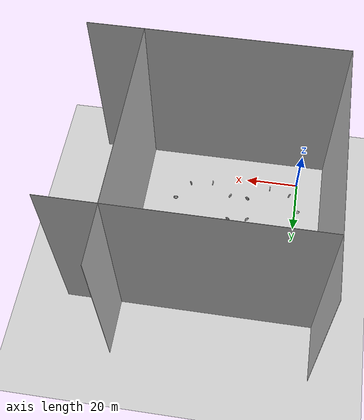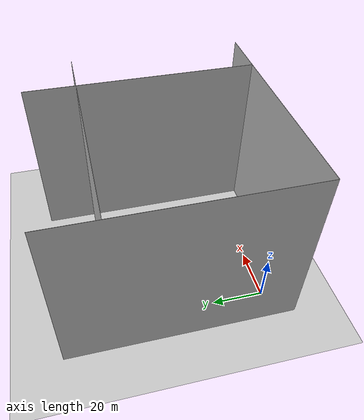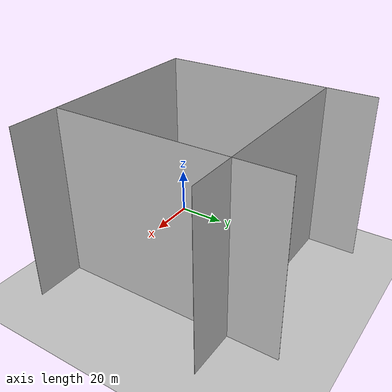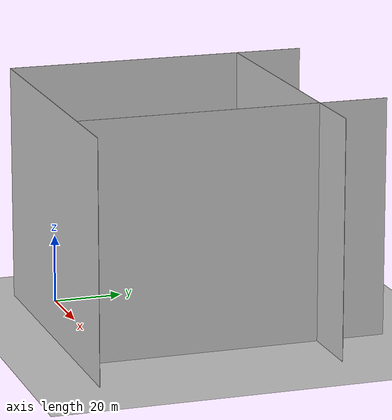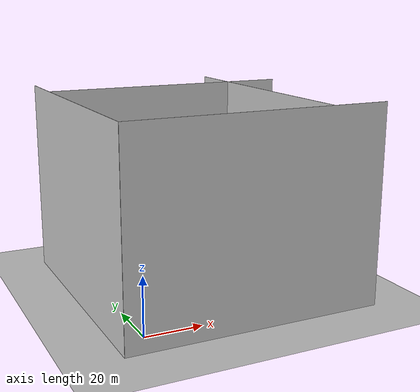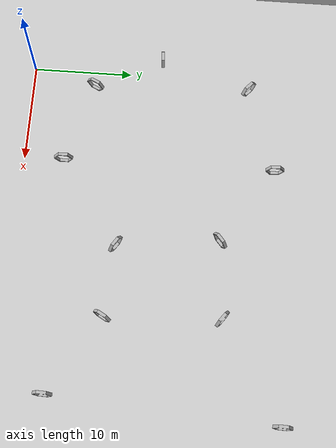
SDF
<sdf version="1.6">
 <world name="dubai_track">
  <plugin name="ros_interface_plugin" filename="librotors_gazebo_ros_interface_plugin.so"/>
  <physics name="default_physics" default="0" type="ode">
   <max_step_size>0.001</max_step_size>
   <real_time_update_rate>2000</real_time_update_rate>
   <real_time_factor>1</real_time_factor>
  </physics>
  <model name="ground_plane">
   <static>1</static>
   <link name="link">
    <collision name="collision">
     <geometry><plane><normal>0 0 1</normal><size>120 120</size></plane></geometry>
     <surface><friction><ode><mu>100</mu><mu2>50</mu2></ode></friction></surface>
    </collision>
    <visual name="visual">
     <cast_shadows>0</cast_shadows>
     <geometry><plane><normal>0 0 1</normal><size>120 120</size></plane></geometry>
     <material>
      <script>
       <uri>model://ground_plane/materials/scripts/ground_plane.material</uri>
       <name>ground_plane</name>
      </script>
     </material>
    </visual>
   </link>
  </model>
  <model name="wall_1">
   <pose>-10 35 34 0 -0 0</pose>
   <static>1</static>
   <link name="link">
    <inertial><mass>1</mass></inertial>
    <collision name="collision"><geometry><box><size>0.1 90 70</size></box></geometry></collision>
    <visual name="visual">
     <geometry><box><size>0.1 90 70</size></box></geometry>
     <material>
      <script>
       <uri>model://race_track/iros_materials/materials/scripts/sky.material</uri>
       <uri>model://race_track/iros_materials/materials/textures</uri>
       <name>iros/sky</name>
      </script>
     </material>
    </visual>
   </link>
  </model>
  <model name="wall_2">
   <pose>60 35 34 0 -0 0</pose>
   <static>1</static>
   <link name="link">
    <inertial><mass>1</mass></inertial>
    <collision name="collision"><geometry><box><size>0.1 90 70</size></box></geometry></collision>
    <visual name="visual">
     <geometry><box><size>0.1 90 70</size></box></geometry>
     <material>
      <script>
       <uri>model://race_track/iros_materials/materials/scripts/sky.material</uri>
       <uri>model://race_track/iros_materials/materials/textures</uri>
       <name>iros/sky</name>
      </script>
     </material>
    </visual>
   </link>
  </model>
  <model name="wall_3">
   <pose>35 60 34 0 -0 0</pose>
   <static>1</static>
   <link name="link">
    <inertial><mass>1</mass></inertial>
    <collision name="collision"><geometry><box><size>90 0.1 70</size></box></geometry></collision>
    <visual name="visual">
     <geometry><box><size>90 0.1 70</size></box></geometry>
     <material>
      <script>
       <uri>model://race_track/iros_materials/materials/scripts/sky.material</uri>
       <uri>model://race_track/iros_materials/materials/textures</uri>
       <name>iros/sky</name>
      </script>
     </material>
    </visual>
   </link>
  </model>
  <model name="wall_4">
   <pose>35 -10 34 0 -0 0</pose>
   <static>1</static>
   <link name="link">
    <inertial><mass>1</mass></inertial>
    <collision name="collision"><geometry><box><size>90 0.1 70</size></box></geometry></collision>
    <visual name="visual">
     <geometry><box><size>90 0.1 70</size></box></geometry>
     <material>
      <script>
       <uri>model://race_track/iros_materials/materials/scripts/sky.material</uri>
       <uri>model://race_track/iros_materials/materials/textures</uri>
       <name>iros/sky</name>
      </script>
     </material>
    </visual>
   </link>
  </model>
  <model name="gate_1">
   <pose>2.67719 6.70695 2 0 0 -0.447182</pose>
   <static>1</static>
   <link name="gate_1_body">
    <collision name="gate_1_collision">
     <geometry><mesh><uri>model://race_track/real_world/gate/meshes/gate.stl</uri></mesh></geometry>
    </collision>
    <visual name="gate_1_visual">
     <geometry><mesh><uri>model://race_track/real_world/gate/meshes/gate.dae</uri></mesh></geometry>
    </visual>
   </link>
  </model>
  <model name="gate_2">
   <pose>10.5951 4.23611 1.5 0 -0 0.011479</pose>
   <static>1</static>
   <link name="gate_2_body">
    <collision name="gate_2_collision">
     <geometry><mesh><uri>model://race_track/real_world/gate/meshes/gate.stl</uri></mesh></geometry>
    </collision>
    <visual name="gate_2_visual">
     <geometry><mesh><uri>model://race_track/real_world/gate/meshes/gate.dae</uri></mesh></geometry>
    </visual>
   </link>
  </model>
  <model name="gate_3">
   <pose>19.0796 10.0924 1.4 0 -0 0.974806</pose>
   <static>1</static>
   <link name="gate_3_body">
    <collision name="gate_3_collision">
     <geometry><mesh><uri>model://race_track/real_world/gate/meshes/gate.stl</uri></mesh></geometry>
    </collision>
    <visual name="gate_3_visual">
     <geometry><mesh><uri>model://race_track/real_world/gate/meshes/gate.dae</uri></mesh></geometry>
    </visual>
   </link>
  </model>
  <model name="gate_4">
   <pose>25.6675 20.6245 1.5 0 0 -2.2117</pose>
   <static>1</static>
   <link name="gate_4_body">
    <collision name="gate_4_collision">
     <geometry><mesh><uri>model://race_track/real_world/gate/meshes/gate.stl</uri></mesh></geometry>
    </collision>
    <visual name="gate_4_visual">
     <geometry><mesh><uri>model://race_track/real_world/gate/meshes/gate.dae</uri></mesh></geometry>
    </visual>
   </link>
  </model>
  <model name="gate_5">
   <pose>35.1417 26.4984 1.4 0 -0 3.10375</pose>
   <static>1</static>
   <link name="gate_5_body">
    <collision name="gate_5_collision">
     <geometry><mesh><uri>model://race_track/real_world/gate/meshes/gate.stl</uri></mesh></geometry>
    </collision>
    <visual name="gate_5_visual">
     <geometry><mesh><uri>model://race_track/real_world/gate/meshes/gate.dae</uri></mesh></geometry>
    </visual>
   </link>
  </model>
  <model name="gate_6">
   <pose>45.0346 22.2569 1.3 0 -0 2.17527</pose>
   <static>1</static>
   <link name="gate_6_body">
    <collision name="gate_6_collision">
     <geometry><mesh><uri>model://race_track/real_world/gate/meshes/gate.stl</uri></mesh></geometry>
    </collision>
    <visual name="gate_6_visual">
     <geometry><mesh><uri>model://race_track/real_world/gate/meshes/gate.dae</uri></mesh></geometry>
    </visual>
   </link>
  </model>
  <model name="gate_7">
   <pose>47.4443 13.6256 1.4 0 -0 1.57973</pose>
   <static>1</static>
   <link name="gate_7_body">
    <collision name="gate_7_collision">
     <geometry><mesh><uri>model://race_track/real_world/gate/meshes/gate.stl</uri></mesh></geometry>
    </collision>
    <visual name="gate_7_visual">
     <geometry><mesh><uri>model://race_track/real_world/gate/meshes/gate.dae</uri></mesh></geometry>
    </visual>
   </link>
  </model>
  <model name="gate_8">
   <pose>42.4307 5.78127 0.9 0 0 -2.63864</pose>
   <static>1</static>
   <link name="gate_8_body">
    <collision name="gate_8_collision">
     <geometry><mesh><uri>model://race_track/real_world/gate/meshes/gate.stl</uri></mesh></geometry>
    </collision>
    <visual name="gate_8_visual">
     <geometry><mesh><uri>model://race_track/real_world/gate/meshes/gate.dae</uri></mesh></geometry>
    </visual>
   </link>
  </model>
  <model name="gate_9">
   <pose>33.6687 4.71178 1.4 0 -0 3.10979</pose>
   <static>1</static>
   <link name="gate_9_body">
    <collision name="gate_9_collision">
     <geometry><mesh><uri>model://race_track/real_world/gate/meshes/gate.stl</uri></mesh></geometry>
    </collision>
    <visual name="gate_9_visual">
     <geometry><mesh><uri>model://race_track/real_world/gate/meshes/gate.dae</uri></mesh></geometry>
    </visual>
   </link>
  </model>
  <model name="gate_10">
   <pose>26.0125 9.41809 0.9 0 0 -0.514769</pose>
   <static>1</static>
   <link name="gate_10_body">
    <collision name="gate_10_collision">
     <geometry><mesh><uri>model://race_track/real_world/gate/meshes/gate.stl</uri></mesh></geometry>
    </collision>
    <visual name="gate_10_visual">
     <geometry><mesh><uri>model://race_track/real_world/gate/meshes/gate.dae</uri></mesh></geometry>
    </visual>
   </link>
  </model>
  <model name="gate_11">
   <pose>18.2181 20.0025 2 0 0 -0.874979</pose>
   <static>1</static>
   <link name="gate_11_body">
    <collision name="gate_11_collision">
     <geometry><mesh><uri>model://race_track/real_world/gate/meshes/gate.stl</uri></mesh></geometry>
    </collision>
    <visual name="gate_11_visual">
     <geometry><mesh><uri>model://race_track/real_world/gate/meshes/gate.dae</uri></mesh></geometry>
    </visual>
   </link>
  </model>
  <model name="gate_12">
   <pose>10.2397 25.0567 0.9 0 0 -3.10152</pose>
   <static>1</static>
   <link name="gate_12_body">
    <collision name="gate_12_collision">
     <geometry><mesh><uri>model://race_track/real_world/gate/meshes/gate.stl</uri></mesh></geometry>
    </collision>
    <visual name="gate_12_visual">
     <geometry><mesh><uri>model://race_track/real_world/gate/meshes/gate.dae</uri></mesh></geometry>
    </visual>
   </link>
  </model>
  <model name="gate_13">
   <pose>2.12946 22.0464 2 0 -0 0.822026</pose>
   <static>1</static>
   <link name="gate_13_body">
    <collision name="gate_13_collision">
     <geometry><mesh><uri>model://race_track/real_world/gate/meshes/gate.stl</uri></mesh></geometry>
    </collision>
    <visual name="gate_13_visual">
     <geometry><mesh><uri>model://race_track/real_world/gate/meshes/gate.dae</uri></mesh></geometry>
    </visual>
   </link>
  </model>
  <model name="gate_14">
   <pose>-1.15213 13.1935 0.9 0 0 -1.5</pose>
   <static>1</static>
   <link name="gate_14_body">
    <collision name="gate_14_collision">
     <geometry><mesh><uri>model://race_track/real_world/gate/meshes/gate.stl</uri></mesh></geometry>
    </collision>
    <visual name="gate_14_visual">
     <geometry><mesh><uri>model://race_track/real_world/gate/meshes/gate.dae</uri></mesh></geometry>
    </visual>
   </link>
  </model>
  <scene><ambient>1 1 1 1</ambient><background>0.7 0.7 0.7 1</background><shadows>1</shadows></scene>
  <gravity>0 0 -9.8</gravity>
  <magnetic_field>6e-06 2.3e-05 -4.2e-05</magnetic_field>
  <atmosphere type="adiabatic"/>
  <audio><device>default</device></audio>
  <spherical_coordinates>
   <surface_model>EARTH_WGS84</surface_model>
   <latitude_deg>0</latitude_deg>
   <longitude_deg>0</longitude_deg>
   <elevation>0</elevation>
   <heading_deg>0</heading_deg>
  </spherical_coordinates>
  <light name="user_point_light_0" type="point">
   <pose>14.3744 -31.3614 1 0 -0 0</pose>
   <diffuse>0.5 0.5 0.5 1</diffuse>
   <specular>0.1 0.1 0.1 1</specular>
   <attenuation>
    <range>100</range>
    <constant>1.0</constant>
    <linear>0.0</linear>
    <quadratic>0.0</quadratic>
   </attenuation>
   <cast_shadows>0</cast_shadows>
   <direction>0 0 -1</direction>
  </light>
  <light name="user_point_light_1" type="point">
   <pose>22.1188 -31.6852 1 0 -0 0</pose>
   <diffuse>0.5 0.5 0.5 1</diffuse>
   <specular>0.1 0.1 0.1 1</specular>
   <attenuation>
    <range>100</range>
    <constant>1.0</constant>
    <linear>0.0</linear>
    <quadratic>0.0</quadratic>
   </attenuation>
   <cast_shadows>0</cast_shadows>
   <direction>0 0 -1</direction>
  </light>
  <light name="user_point_light_2" type="point">
   <pose>31.4331 -33.084 1 0 -0 0</pose>
   <diffuse>0.5 0.5 0.5 1</diffuse>
   <specular>0.1 0.1 0.1 1</specular>
   <attenuation>
    <range>100</range>
    <constant>1.0</constant>
    <linear>0.0</linear>
    <quadratic>0.0</quadratic>
   </attenuation>
   <cast_shadows>0</cast_shadows>
   <direction>0 0 -1</direction>
  </light>
  <light name="user_point_light_3" type="point">
   <pose>37.135 -35.0607 1 0 -0 0</pose>
   <diffuse>0.5 0.5 0.5 1</diffuse>
   <specular>0.1 0.1 0.1 1</specular>
   <attenuation>
    <range>100</range>
    <constant>1.0</constant>
    <linear>0.0</linear>
    <quadratic>0.0</quadratic>
   </attenuation>
   <cast_shadows>0</cast_shadows>
   <direction>0 0 -1</direction>
  </light>
  <light name="user_point_light_4" type="point">
   <pose>6.84622 -30.4097 1 0 -0 0</pose>
   <diffuse>0.5 0.5 0.5 1</diffuse>
   <specular>0.1 0.1 0.1 1</specular>
   <attenuation>
    <range>100</range>
    <constant>1.0</constant>
    <linear>0.0</linear>
    <quadratic>0.0</quadratic>
   </attenuation>
   <cast_shadows>0</cast_shadows>
   <direction>0 0 -1</direction>
  </light>
  <light name="user_point_light_5" type="point">
   <pose>1.43993 -35.6145 1 0 -0 0</pose>
   <diffuse>0.5 0.5 0.5 1</diffuse>
   <specular>0.1 0.1 0.1 1</specular>
   <attenuation>
    <range>100</range>
    <constant>1.0</constant>
    <linear>0.0</linear>
    <quadratic>0.0</quadratic>
   </attenuation>
   <cast_shadows>0</cast_shadows>
   <direction>0 0 -1</direction>
  </light>
  <light name="user_point_light_6" type="point">
   <pose>14.8 -41.0504 1 0 -0 0</pose>
   <diffuse>0.5 0.5 0.5 1</diffuse>
   <specular>0.1 0.1 0.1 1</specular>
   <attenuation>
    <range>100</range>
    <constant>1.0</constant>
    <linear>0.0</linear>
    <quadratic>0.0</quadratic>
   </attenuation>
   <cast_shadows>0</cast_shadows>
   <direction>0 0 -1</direction>
  </light>
  <light name="user_point_light_7" type="point">
   <pose>23.6794 -39.9093 1 0 -0 0</pose>
   <diffuse>0.5 0.5 0.5 1</diffuse>
   <specular>0.1 0.1 0.1 1</specular>
   <attenuation>
    <range>100</range>
    <constant>1.0</constant>
    <linear>0.0</linear>
    <quadratic>0.0</quadratic>
   </attenuation>
   <cast_shadows>0</cast_shadows>
   <direction>0 0 -1</direction>
  </light>
  <light name="user_point_light_8" type="point">
   <pose>30.8131 -42.2014 1 0 -0 0</pose>
   <diffuse>0.5 0.5 0.5 1</diffuse>
   <specular>0.1 0.1 0.1 1</specular>
   <attenuation>
    <range>100</range>
    <constant>1.0</constant>
    <linear>0.0</linear>
    <quadratic>0.0</quadratic>
   </attenuation>
   <cast_shadows>0</cast_shadows>
   <direction>0 0 -1</direction>
  </light>
  <light name="user_point_light_9" type="point">
   <pose>42.6462 -44.2737 1 0 -0 0</pose>
   <diffuse>0.5 0.5 0.5 1</diffuse>
   <specular>0.1 0.1 0.1 1</specular>
   <attenuation>
    <range>100</range>
    <constant>1.0</constant>
    <linear>0.0</linear>
    <quadratic>0.0</quadratic>
   </attenuation>
   <cast_shadows>0</cast_shadows>
   <direction>0 0 -1</direction>
  </light>
  <light name="user_directional_light_0" type="directional">
   <pose>20.2832 -37.1175 1 0 -0 0</pose>
   <diffuse>0.5 0.5 0.5 1</diffuse>
   <specular>0.1 0.1 0.1 1</specular>
   <direction>0.1 0.1 -0.9</direction>
   <attenuation>
    <range>100</range>
    <constant>1.0</constant>
    <linear>0.0</linear>
    <quadratic>0.0</quadratic>
   </attenuation>
  </light>
 </world>
</sdf>
